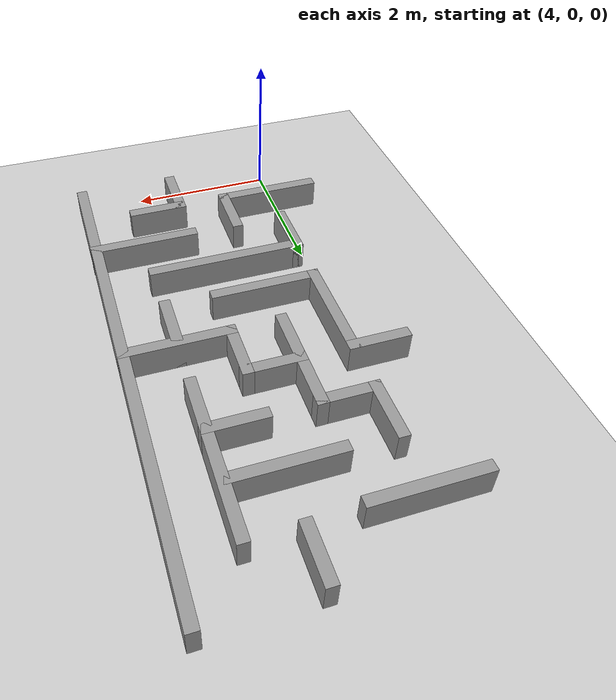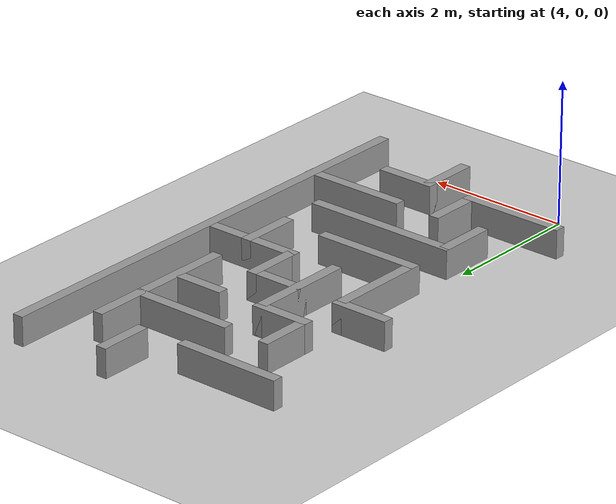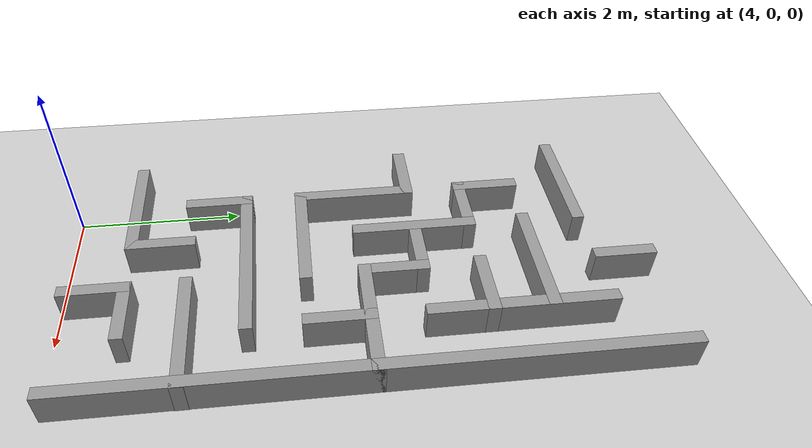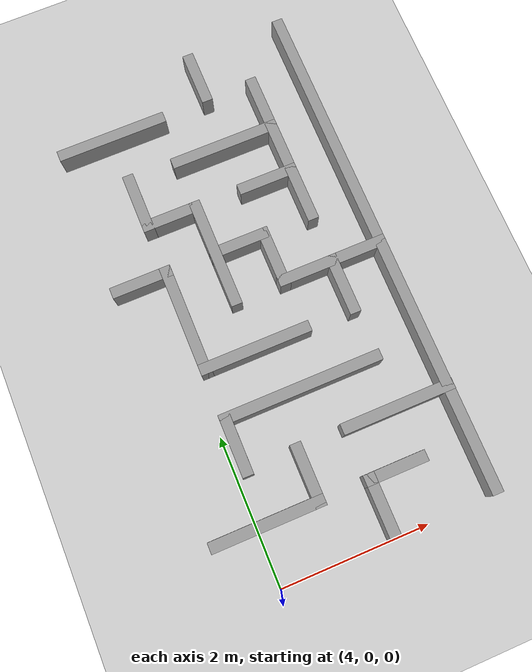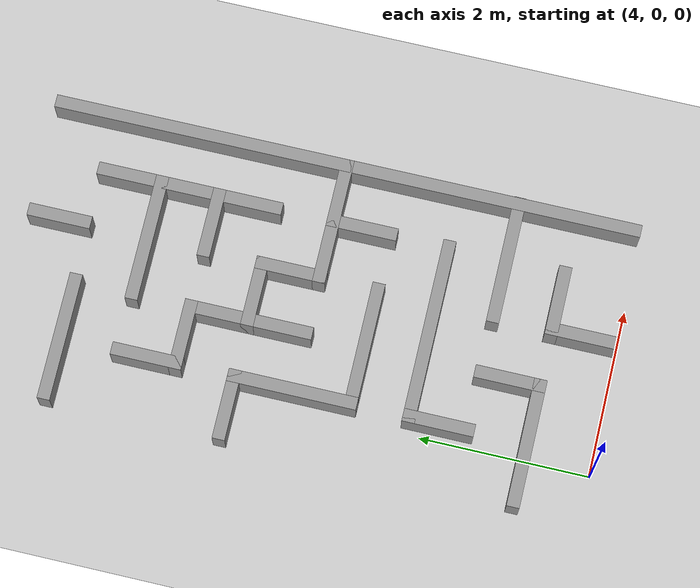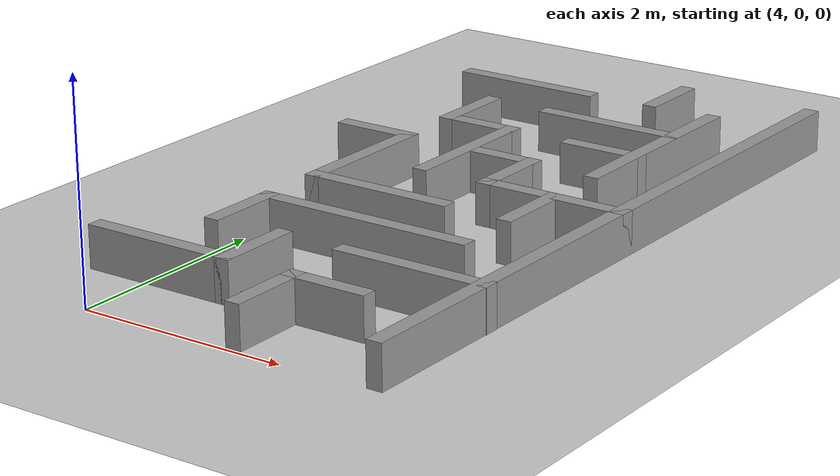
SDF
<sdf version="1.7">
 <world name="default">
  <model name="ground_plane">
   <static>1</static>
   <link name="link">
    <collision name="collision">
     <geometry><plane><normal>0 0 1</normal><size>100 100</size></plane></geometry>
     <surface>
      <contact><collide_bitmask>65535</collide_bitmask></contact>
      <friction><ode><mu>100</mu><mu2>50</mu2></ode></friction>
     </surface>
    </collision>
    <visual name="visual">
     <cast_shadows>0</cast_shadows>
     <geometry><plane><normal>0 0 1</normal><size>100 100</size></plane></geometry>
     <material>
      <script><uri>file://media/materials/scripts/gazebo.material</uri><name>Gazebo/Grey</name></script>
     </material>
    </visual>
   </link>
  </model>
  <model name="Map_1">
   <link name="Wall_158">
    <pose>3.425 0 0 0 -0 1.5708</pose>
    <inertial>
     <mass>1</mass>
     <inertia><ixx>1</ixx><ixy>0</ixy><ixz>0</ixz><iyy>1</iyy><iyz>0</iyz><izz>1</izz></inertia>
    </inertial>
    <visual name="Wall_158_Visual">
     <pose>0 0 0.2 0 -0 0</pose>
     <geometry><box><size>7 0.15 0.4</size></box></geometry>
     <material>
      <script><uri>file://media/materials/scripts/gazebo.material</uri><name>Gazebo/Grey</name></script>
      <ambient>1 1 1 1</ambient>
      <shader type="pixel"><normal_map>__default__</normal_map></shader>
      <diffuse>0.7 0.7 0.7 1</diffuse>
      <specular>0.01 0.01 0.01 1</specular>
      <emissive>0 0 0 1</emissive>
     </material>
     <meta><layer>0</layer></meta>
    </visual>
    <collision name="Wall_158_Collision">
     <pose>0 0 0.2 0 -0 0</pose>
     <geometry><box><size>7 0.15 0.4</size></box></geometry>
     <surface>
      <friction>
       <ode><mu>1</mu><mu2>1</mu2><fdir1>0 0 0</fdir1><slip1>0</slip1><slip2>0</slip2></ode>
       <torsional>
        <coefficient>1</coefficient>
        <patch_radius>0</patch_radius>
        <surface_radius>0</surface_radius>
        <use_patch_radius>1</use_patch_radius>
        <ode><slip>0</slip></ode>
       </torsional>
      </friction>
      <bounce><restitution_coefficient>0</restitution_coefficient><threshold>1e+06</threshold></bounce>
      <contact>
       <collide_without_contact>0</collide_without_contact>
       <collide_without_contact_bitmask>1</collide_without_contact_bitmask>
       <collide_bitmask>1</collide_bitmask>
       <ode>
        <soft_cfm>0</soft_cfm>
        <soft_erp>0.2</soft_erp>
        <kp>1e+13</kp>
        <kd>1</kd>
        <max_vel>0.01</max_vel>
        <min_depth>0</min_depth>
       </ode>
       <bullet>
        <split_impulse>1</split_impulse>
        <split_impulse_penetration_threshold>-0.01</split_impulse_penetration_threshold>
        <soft_cfm>0</soft_cfm>
        <soft_erp>0.2</soft_erp>
        <kp>1e+13</kp>
        <kd>1</kd>
       </bullet>
      </contact>
     </surface>
    </collision>
   </link>
   <link name="Wall_191">
    <pose>0.685 2.74 0 0 -0 0</pose>
    <inertial>
     <mass>1</mass>
     <inertia><ixx>1</ixx><ixy>0</ixy><ixz>0</ixz><iyy>1</iyy><iyz>0</iyz><izz>1</izz></inertia>
    </inertial>
    <visual name="Wall_191_Visual">
     <pose>0 0 0.2 0 -0 0</pose>
     <geometry><box><size>1.52 0.15 0.4</size></box></geometry>
     <material>
      <script><uri>file://media/materials/scripts/gazebo.material</uri><name>Gazebo/Grey</name></script>
      <ambient>1 1 1 1</ambient>
      <shader type="pixel"><normal_map>__default__</normal_map></shader>
      <diffuse>0.7 0.7 0.7 1</diffuse>
      <specular>0.01 0.01 0.01 1</specular>
      <emissive>0 0 0 1</emissive>
     </material>
     <meta><layer>0</layer></meta>
    </visual>
    <collision name="Wall_191_Collision">
     <pose>0 0 0.2 0 -0 0</pose>
     <geometry><box><size>1.52 0.15 0.4</size></box></geometry>
     <surface>
      <friction>
       <ode><mu>1</mu><mu2>1</mu2><fdir1>0 0 0</fdir1><slip1>0</slip1><slip2>0</slip2></ode>
       <torsional>
        <coefficient>1</coefficient>
        <patch_radius>0</patch_radius>
        <surface_radius>0</surface_radius>
        <use_patch_radius>1</use_patch_radius>
        <ode><slip>0</slip></ode>
       </torsional>
      </friction>
      <bounce><restitution_coefficient>0</restitution_coefficient><threshold>1e+06</threshold></bounce>
      <contact>
       <collide_without_contact>0</collide_without_contact>
       <collide_without_contact_bitmask>1</collide_without_contact_bitmask>
       <collide_bitmask>1</collide_bitmask>
       <ode>
        <soft_cfm>0</soft_cfm>
        <soft_erp>0.2</soft_erp>
        <kp>1e+13</kp>
        <kd>1</kd>
        <max_vel>0.01</max_vel>
        <min_depth>0</min_depth>
       </ode>
       <bullet>
        <split_impulse>1</split_impulse>
        <split_impulse_penetration_threshold>-0.01</split_impulse_penetration_threshold>
        <soft_cfm>0</soft_cfm>
        <soft_erp>0.2</soft_erp>
        <kp>1e+13</kp>
        <kd>1</kd>
       </bullet>
      </contact>
     </surface>
    </collision>
   </link>
   <link name="Wall_194">
    <pose>2.055 2.055 0 0 -0 0</pose>
    <inertial>
     <mass>1</mass>
     <inertia><ixx>1</ixx><ixy>0</ixy><ixz>0</ixz><iyy>1</iyy><iyz>0</iyz><izz>1</izz></inertia>
    </inertial>
    <visual name="Wall_194_Visual">
     <pose>0 0 0.2 0 -0 0</pose>
     <geometry><box><size>1.52 0.15 0.4</size></box></geometry>
     <material>
      <script><uri>file://media/materials/scripts/gazebo.material</uri><name>Gazebo/Grey</name></script>
      <ambient>1 1 1 1</ambient>
      <shader type="pixel"><normal_map>__default__</normal_map></shader>
      <diffuse>0.7 0.7 0.7 1</diffuse>
      <specular>0.01 0.01 0.01 1</specular>
      <emissive>0 0 0 1</emissive>
     </material>
     <meta><layer>0</layer></meta>
    </visual>
    <collision name="Wall_194_Collision">
     <pose>0 0 0.2 0 -0 0</pose>
     <geometry><box><size>1.52 0.15 0.4</size></box></geometry>
     <surface>
      <friction>
       <ode><mu>1</mu><mu2>1</mu2><fdir1>0 0 0</fdir1><slip1>0</slip1><slip2>0</slip2></ode>
       <torsional>
        <coefficient>1</coefficient>
        <patch_radius>0</patch_radius>
        <surface_radius>0</surface_radius>
        <use_patch_radius>1</use_patch_radius>
        <ode><slip>0</slip></ode>
       </torsional>
      </friction>
      <bounce><restitution_coefficient>0</restitution_coefficient><threshold>1e+06</threshold></bounce>
      <contact>
       <collide_without_contact>0</collide_without_contact>
       <collide_without_contact_bitmask>1</collide_without_contact_bitmask>
       <collide_bitmask>1</collide_bitmask>
       <ode>
        <soft_cfm>0</soft_cfm>
        <soft_erp>0.2</soft_erp>
        <kp>1e+13</kp>
        <kd>1</kd>
        <max_vel>0.01</max_vel>
        <min_depth>0</min_depth>
       </ode>
       <bullet>
        <split_impulse>1</split_impulse>
        <split_impulse_penetration_threshold>-0.01</split_impulse_penetration_threshold>
        <soft_cfm>0</soft_cfm>
        <soft_erp>0.2</soft_erp>
        <kp>1e+13</kp>
        <kd>1</kd>
       </bullet>
      </contact>
     </surface>
    </collision>
   </link>
   <link name="Wall_196">
    <pose>2.74 1.7125 0 0 0 -1.5708</pose>
    <inertial>
     <mass>1</mass>
     <inertia><ixx>1</ixx><ixy>0</ixy><ixz>0</ixz><iyy>1</iyy><iyz>0</iyz><izz>1</izz></inertia>
    </inertial>
    <visual name="Wall_196_Visual">
     <pose>0 0 0.2 0 -0 0</pose>
     <geometry><box><size>2.205 0.15 0.4</size></box></geometry>
     <material>
      <script><uri>file://media/materials/scripts/gazebo.material</uri><name>Gazebo/Grey</name></script>
      <ambient>1 1 1 1</ambient>
      <shader type="pixel"><normal_map>__default__</normal_map></shader>
      <diffuse>0.7 0.7 0.7 1</diffuse>
      <specular>0.01 0.01 0.01 1</specular>
      <emissive>0 0 0 1</emissive>
     </material>
     <meta><layer>0</layer></meta>
    </visual>
    <collision name="Wall_196_Collision">
     <pose>0 0 0.2 0 -0 0</pose>
     <geometry><box><size>2.205 0.15 0.4</size></box></geometry>
     <surface>
      <friction>
       <ode><mu>1</mu><mu2>1</mu2><fdir1>0 0 0</fdir1><slip1>0</slip1><slip2>0</slip2></ode>
       <torsional>
        <coefficient>1</coefficient>
        <patch_radius>0</patch_radius>
        <surface_radius>0</surface_radius>
        <use_patch_radius>1</use_patch_radius>
        <ode><slip>0</slip></ode>
       </torsional>
      </friction>
      <bounce><restitution_coefficient>0</restitution_coefficient><threshold>1e+06</threshold></bounce>
      <contact>
       <collide_without_contact>0</collide_without_contact>
       <collide_without_contact_bitmask>1</collide_without_contact_bitmask>
       <collide_bitmask>1</collide_bitmask>
       <ode>
        <soft_cfm>0</soft_cfm>
        <soft_erp>0.2</soft_erp>
        <kp>1e+13</kp>
        <kd>1</kd>
        <max_vel>0.01</max_vel>
        <min_depth>0</min_depth>
       </ode>
       <bullet>
        <split_impulse>1</split_impulse>
        <split_impulse_penetration_threshold>-0.01</split_impulse_penetration_threshold>
        <soft_cfm>0</soft_cfm>
        <soft_erp>0.2</soft_erp>
        <kp>1e+13</kp>
        <kd>1</kd>
       </bullet>
      </contact>
     </surface>
    </collision>
   </link>
   <link name="Wall_198">
    <pose>2.07424 3.10446 0 0 0 -1.5708</pose>
    <inertial>
     <mass>1</mass>
     <inertia><ixx>1</ixx><ixy>0</ixy><ixz>0</ixz><iyy>1</iyy><iyz>0</iyz><izz>1</izz></inertia>
    </inertial>
    <visual name="Wall_198_Visual">
     <pose>0 0 0.2 0 -0 0</pose>
     <geometry><box><size>0.75 0.15 0.4</size></box></geometry>
     <material>
      <script><uri>file://media/materials/scripts/gazebo.material</uri><name>Gazebo/Grey</name></script>
      <ambient>1 1 1 1</ambient>
      <shader type="pixel"><normal_map>__default__</normal_map></shader>
      <diffuse>0.7 0.7 0.7 1</diffuse>
      <specular>0.01 0.01 0.01 1</specular>
      <emissive>0 0 0 1</emissive>
     </material>
     <meta><layer>0</layer></meta>
    </visual>
    <collision name="Wall_198_Collision">
     <pose>0 0 0.2 0 -0 0</pose>
     <geometry><box><size>0.75 0.15 0.4</size></box></geometry>
     <surface>
      <friction>
       <ode><mu>1</mu><mu2>1</mu2><fdir1>0 0 0</fdir1><slip1>0</slip1><slip2>0</slip2></ode>
       <torsional>
        <coefficient>1</coefficient>
        <patch_radius>0</patch_radius>
        <surface_radius>0</surface_radius>
        <use_patch_radius>1</use_patch_radius>
        <ode><slip>0</slip></ode>
       </torsional>
      </friction>
      <bounce><restitution_coefficient>0</restitution_coefficient><threshold>1e+06</threshold></bounce>
      <contact>
       <collide_without_contact>0</collide_without_contact>
       <collide_without_contact_bitmask>1</collide_without_contact_bitmask>
       <collide_bitmask>1</collide_bitmask>
       <ode>
        <soft_cfm>0</soft_cfm>
        <soft_erp>0.2</soft_erp>
        <kp>1e+13</kp>
        <kd>1</kd>
        <max_vel>0.01</max_vel>
        <min_depth>0</min_depth>
       </ode>
       <bullet>
        <split_impulse>1</split_impulse>
        <split_impulse_penetration_threshold>-0.01</split_impulse_penetration_threshold>
        <soft_cfm>0</soft_cfm>
        <soft_erp>0.2</soft_erp>
        <kp>1e+13</kp>
        <kd>1</kd>
       </bullet>
      </contact>
     </surface>
    </collision>
   </link>
   <link name="Wall_200">
    <pose>2.3975 1.37 0 0 -0 3.14159</pose>
    <inertial>
     <mass>1</mass>
     <inertia><ixx>1</ixx><ixy>0</ixy><ixz>0</ixz><iyy>1</iyy><iyz>0</iyz><izz>1</izz></inertia>
    </inertial>
    <visual name="Wall_200_Visual">
     <pose>0 0 0.2 0 -0 0</pose>
     <geometry><box><size>0.835 0.15 0.4</size></box></geometry>
     <material>
      <script><uri>file://media/materials/scripts/gazebo.material</uri><name>Gazebo/Grey</name></script>
      <ambient>1 1 1 1</ambient>
      <shader type="pixel"><normal_map>__default__</normal_map></shader>
      <diffuse>0.7 0.7 0.7 1</diffuse>
      <specular>0.01 0.01 0.01 1</specular>
      <emissive>0 0 0 1</emissive>
     </material>
     <meta><layer>0</layer></meta>
    </visual>
    <collision name="Wall_200_Collision">
     <pose>0 0 0.2 0 -0 0</pose>
     <geometry><box><size>0.835 0.15 0.4</size></box></geometry>
     <surface>
      <friction>
       <ode><mu>1</mu><mu2>1</mu2><fdir1>0 0 0</fdir1><slip1>0</slip1><slip2>0</slip2></ode>
       <torsional>
        <coefficient>1</coefficient>
        <patch_radius>0</patch_radius>
        <surface_radius>0</surface_radius>
        <use_patch_radius>1</use_patch_radius>
        <ode><slip>0</slip></ode>
       </torsional>
      </friction>
      <bounce><restitution_coefficient>0</restitution_coefficient><threshold>1e+06</threshold></bounce>
      <contact>
       <collide_without_contact>0</collide_without_contact>
       <collide_without_contact_bitmask>1</collide_without_contact_bitmask>
       <collide_bitmask>1</collide_bitmask>
       <ode>
        <soft_cfm>0</soft_cfm>
        <soft_erp>0.2</soft_erp>
        <kp>1e+13</kp>
        <kd>1</kd>
        <max_vel>0.01</max_vel>
        <min_depth>0</min_depth>
       </ode>
       <bullet>
        <split_impulse>1</split_impulse>
        <split_impulse_penetration_threshold>-0.01</split_impulse_penetration_threshold>
        <soft_cfm>0</soft_cfm>
        <soft_erp>0.2</soft_erp>
        <kp>1e+13</kp>
        <kd>1</kd>
       </bullet>
      </contact>
     </surface>
    </collision>
   </link>
   <link name="Wall_202">
    <pose>2.74 0 0 0 -0 3.14159</pose>
    <inertial>
     <mass>1</mass>
     <inertia><ixx>1</ixx><ixy>0</ixy><ixz>0</ixz><iyy>1</iyy><iyz>0</iyz><izz>1</izz></inertia>
    </inertial>
    <visual name="Wall_202_Visual">
     <pose>0 0 0.2 0 -0 0</pose>
     <geometry><box><size>1.52 0.15 0.4</size></box></geometry>
     <material>
      <script><uri>file://media/materials/scripts/gazebo.material</uri><name>Gazebo/Grey</name></script>
      <ambient>1 1 1 1</ambient>
      <shader type="pixel"><normal_map>__default__</normal_map></shader>
      <diffuse>0.7 0.7 0.7 1</diffuse>
      <specular>0.01 0.01 0.01 1</specular>
      <emissive>0 0 0 1</emissive>
     </material>
     <meta><layer>0</layer></meta>
    </visual>
    <collision name="Wall_202_Collision">
     <pose>0 0 0.2 0 -0 0</pose>
     <geometry><box><size>1.52 0.15 0.4</size></box></geometry>
     <surface>
      <friction>
       <ode><mu>1</mu><mu2>1</mu2><fdir1>0 0 0</fdir1><slip1>0</slip1><slip2>0</slip2></ode>
       <torsional>
        <coefficient>1</coefficient>
        <patch_radius>0</patch_radius>
        <surface_radius>0</surface_radius>
        <use_patch_radius>1</use_patch_radius>
        <ode><slip>0</slip></ode>
       </torsional>
      </friction>
      <bounce><restitution_coefficient>0</restitution_coefficient><threshold>1e+06</threshold></bounce>
      <contact>
       <collide_without_contact>0</collide_without_contact>
       <collide_without_contact_bitmask>1</collide_without_contact_bitmask>
       <collide_bitmask>1</collide_bitmask>
       <ode>
        <soft_cfm>0</soft_cfm>
        <soft_erp>0.2</soft_erp>
        <kp>1e+13</kp>
        <kd>1</kd>
        <max_vel>0.01</max_vel>
        <min_depth>0</min_depth>
       </ode>
       <bullet>
        <split_impulse>1</split_impulse>
        <split_impulse_penetration_threshold>-0.01</split_impulse_penetration_threshold>
        <soft_cfm>0</soft_cfm>
        <soft_erp>0.2</soft_erp>
        <kp>1e+13</kp>
        <kd>1</kd>
       </bullet>
      </contact>
     </surface>
    </collision>
   </link>
   <link name="Wall_204">
    <pose>2.055 0.3425 0 0 -0 1.5708</pose>
    <inertial>
     <mass>1</mass>
     <inertia><ixx>1</ixx><ixy>0</ixy><ixz>0</ixz><iyy>1</iyy><iyz>0</iyz><izz>1</izz></inertia>
    </inertial>
    <visual name="Wall_204_Visual">
     <pose>0 0 0.2 0 -0 0</pose>
     <geometry><box><size>0.835 0.15 0.4</size></box></geometry>
     <material>
      <script><uri>file://media/materials/scripts/gazebo.material</uri><name>Gazebo/Grey</name></script>
      <ambient>1 1 1 1</ambient>
      <shader type="pixel"><normal_map>__default__</normal_map></shader>
      <diffuse>0.7 0.7 0.7 1</diffuse>
      <specular>0.01 0.01 0.01 1</specular>
      <emissive>0 0 0 1</emissive>
     </material>
     <meta><layer>0</layer></meta>
    </visual>
    <collision name="Wall_204_Collision">
     <pose>0 0 0.2 0 -0 0</pose>
     <geometry><box><size>0.825 0.15 0.4</size></box></geometry>
     <surface>
      <friction>
       <ode><mu>1</mu><mu2>1</mu2><fdir1>0 0 0</fdir1><slip1>0</slip1><slip2>0</slip2></ode>
       <torsional>
        <coefficient>1</coefficient>
        <patch_radius>0</patch_radius>
        <surface_radius>0</surface_radius>
        <use_patch_radius>1</use_patch_radius>
        <ode><slip>0</slip></ode>
       </torsional>
      </friction>
      <bounce><restitution_coefficient>0</restitution_coefficient><threshold>1e+06</threshold></bounce>
      <contact>
       <collide_without_contact>0</collide_without_contact>
       <collide_without_contact_bitmask>1</collide_without_contact_bitmask>
       <collide_bitmask>1</collide_bitmask>
       <ode>
        <soft_cfm>0</soft_cfm>
        <soft_erp>0.2</soft_erp>
        <kp>1e+13</kp>
        <kd>1</kd>
        <max_vel>0.01</max_vel>
        <min_depth>0</min_depth>
       </ode>
       <bullet>
        <split_impulse>1</split_impulse>
        <split_impulse_penetration_threshold>-0.01</split_impulse_penetration_threshold>
        <soft_cfm>0</soft_cfm>
        <soft_erp>0.2</soft_erp>
        <kp>1e+13</kp>
        <kd>1</kd>
       </bullet>
      </contact>
     </surface>
    </collision>
   </link>
   <link name="Wall_206">
    <pose>1.37 0.685 0 0 -0 1.5708</pose>
    <inertial>
     <mass>1</mass>
     <inertia><ixx>1</ixx><ixy>0</ixy><ixz>0</ixz><iyy>1</iyy><iyz>0</iyz><izz>1</izz></inertia>
    </inertial>
    <visual name="Wall_206_Visual">
     <pose>0 0 0.2 0 -0 0</pose>
     <geometry><box><size>1.52 0.15 0.4</size></box></geometry>
     <material>
      <script><uri>file://media/materials/scripts/gazebo.material</uri><name>Gazebo/Grey</name></script>
      <ambient>1 1 1 1</ambient>
      <shader type="pixel"><normal_map>__default__</normal_map></shader>
      <diffuse>0.7 0.7 0.7 1</diffuse>
      <specular>0.01 0.01 0.01 1</specular>
      <emissive>0 0 0 1</emissive>
     </material>
     <meta><layer>0</layer></meta>
    </visual>
    <collision name="Wall_206_Collision">
     <pose>0 0 0.2 0 -0 0</pose>
     <geometry><box><size>1.52 0.15 0.4</size></box></geometry>
     <surface>
      <friction>
       <ode><mu>1</mu><mu2>1</mu2><fdir1>0 0 0</fdir1><slip1>0</slip1><slip2>0</slip2></ode>
       <torsional>
        <coefficient>1</coefficient>
        <patch_radius>0</patch_radius>
        <surface_radius>0</surface_radius>
        <use_patch_radius>1</use_patch_radius>
        <ode><slip>0</slip></ode>
       </torsional>
      </friction>
      <bounce><restitution_coefficient>0</restitution_coefficient><threshold>1e+06</threshold></bounce>
      <contact>
       <collide_without_contact>0</collide_without_contact>
       <collide_without_contact_bitmask>1</collide_without_contact_bitmask>
       <collide_bitmask>1</collide_bitmask>
       <ode>
        <soft_cfm>0</soft_cfm>
        <soft_erp>0.2</soft_erp>
        <kp>1e+13</kp>
        <kd>1</kd>
        <max_vel>0.01</max_vel>
        <min_depth>0</min_depth>
       </ode>
       <bullet>
        <split_impulse>1</split_impulse>
        <split_impulse_penetration_threshold>-0.01</split_impulse_penetration_threshold>
        <soft_cfm>0</soft_cfm>
        <soft_erp>0.2</soft_erp>
        <kp>1e+13</kp>
        <kd>1</kd>
       </bullet>
      </contact>
     </surface>
    </collision>
   </link>
   <link name="Wall_209">
    <pose>1.7125 0.685 0 0 -0 3.14159</pose>
    <inertial>
     <mass>1</mass>
     <inertia><ixx>1</ixx><ixy>0</ixy><ixz>0</ixz><iyy>1</iyy><iyz>0</iyz><izz>1</izz></inertia>
    </inertial>
    <visual name="Wall_209_Visual">
     <pose>0 0 0.2 0 -0 0</pose>
     <geometry><box><size>0.835 0.15 0.4</size></box></geometry>
     <material>
      <script><uri>file://media/materials/scripts/gazebo.material</uri><name>Gazebo/Grey</name></script>
      <ambient>1 1 1 1</ambient>
      <shader type="pixel"><normal_map>__default__</normal_map></shader>
      <diffuse>0.7 0.7 0.7 1</diffuse>
      <specular>0.01 0.01 0.01 1</specular>
      <emissive>0 0 0 1</emissive>
     </material>
     <meta><layer>0</layer></meta>
    </visual>
    <collision name="Wall_209_Collision">
     <pose>0 0 0.2 0 -0 0</pose>
     <geometry><box><size>0.835 0.15 0.4</size></box></geometry>
     <surface>
      <friction>
       <ode><mu>1</mu><mu2>1</mu2><fdir1>0 0 0</fdir1><slip1>0</slip1><slip2>0</slip2></ode>
       <torsional>
        <coefficient>1</coefficient>
        <patch_radius>0</patch_radius>
        <surface_radius>0</surface_radius>
        <use_patch_radius>1</use_patch_radius>
        <ode><slip>0</slip></ode>
       </torsional>
      </friction>
      <bounce><restitution_coefficient>0</restitution_coefficient><threshold>1e+06</threshold></bounce>
      <contact>
       <collide_without_contact>0</collide_without_contact>
       <collide_without_contact_bitmask>1</collide_without_contact_bitmask>
       <collide_bitmask>1</collide_bitmask>
       <ode>
        <soft_cfm>0</soft_cfm>
        <soft_erp>0.2</soft_erp>
        <kp>1e+13</kp>
        <kd>1</kd>
        <max_vel>0.01</max_vel>
        <min_depth>0</min_depth>
       </ode>
       <bullet>
        <split_impulse>1</split_impulse>
        <split_impulse_penetration_threshold>-0.01</split_impulse_penetration_threshold>
        <soft_cfm>0</soft_cfm>
        <soft_erp>0.2</soft_erp>
        <kp>1e+13</kp>
        <kd>1</kd>
       </bullet>
      </contact>
     </surface>
    </collision>
   </link>
   <link name="Wall_215">
    <pose>1.0275 1.37 0 0 -0 3.14159</pose>
    <inertial>
     <mass>1</mass>
     <inertia><ixx>1</ixx><ixy>0</ixy><ixz>0</ixz><iyy>1</iyy><iyz>0</iyz><izz>1</izz></inertia>
    </inertial>
    <visual name="Wall_215_Visual">
     <pose>0 0 0.2 0 -0 0</pose>
     <geometry><box><size>0.835 0.15 0.4</size></box></geometry>
     <material>
      <script><uri>file://media/materials/scripts/gazebo.material</uri><name>Gazebo/Grey</name></script>
      <ambient>1 1 1 1</ambient>
      <shader type="pixel"><normal_map>__default__</normal_map></shader>
      <diffuse>0.7 0.7 0.7 1</diffuse>
      <specular>0.01 0.01 0.01 1</specular>
      <emissive>0 0 0 1</emissive>
     </material>
     <meta><layer>0</layer></meta>
    </visual>
    <collision name="Wall_215_Collision">
     <pose>0 0 0.2 0 -0 0</pose>
     <geometry><box><size>0.835 0.15 0.4</size></box></geometry>
     <surface>
      <friction>
       <ode><mu>1</mu><mu2>1</mu2><fdir1>0 0 0</fdir1><slip1>0</slip1><slip2>0</slip2></ode>
       <torsional>
        <coefficient>1</coefficient>
        <patch_radius>0</patch_radius>
        <surface_radius>0</surface_radius>
        <use_patch_radius>1</use_patch_radius>
        <ode><slip>0</slip></ode>
       </torsional>
      </friction>
      <bounce><restitution_coefficient>0</restitution_coefficient><threshold>1e+06</threshold></bounce>
      <contact>
       <collide_without_contact>0</collide_without_contact>
       <collide_without_contact_bitmask>1</collide_without_contact_bitmask>
       <collide_bitmask>1</collide_bitmask>
       <ode>
        <soft_cfm>0</soft_cfm>
        <soft_erp>0.2</soft_erp>
        <kp>1e+13</kp>
        <kd>1</kd>
        <max_vel>0.01</max_vel>
        <min_depth>0</min_depth>
       </ode>
       <bullet>
        <split_impulse>1</split_impulse>
        <split_impulse_penetration_threshold>-0.01</split_impulse_penetration_threshold>
        <soft_cfm>0</soft_cfm>
        <soft_erp>0.2</soft_erp>
        <kp>1e+13</kp>
        <kd>1</kd>
       </bullet>
      </contact>
     </surface>
    </collision>
   </link>
   <link name="Wall_217">
    <pose>0.685 1.7125 0 0 -0 1.5708</pose>
    <inertial>
     <mass>1</mass>
     <inertia><ixx>1</ixx><ixy>0</ixy><ixz>0</ixz><iyy>1</iyy><iyz>0</iyz><izz>1</izz></inertia>
    </inertial>
    <visual name="Wall_217_Visual">
     <pose>0 0 0.2 0 -0 0</pose>
     <geometry><box><size>0.835 0.15 0.4</size></box></geometry>
     <material>
      <script><uri>file://media/materials/scripts/gazebo.material</uri><name>Gazebo/Grey</name></script>
      <ambient>1 1 1 1</ambient>
      <shader type="pixel"><normal_map>__default__</normal_map></shader>
      <diffuse>0.7 0.7 0.7 1</diffuse>
      <specular>0.01 0.01 0.01 1</specular>
      <emissive>0 0 0 1</emissive>
     </material>
     <meta><layer>0</layer></meta>
    </visual>
    <collision name="Wall_217_Collision">
     <pose>0 0 0.2 0 -0 0</pose>
     <geometry><box><size>0.835 0.15 0.4</size></box></geometry>
     <surface>
      <friction>
       <ode><mu>1</mu><mu2>1</mu2><fdir1>0 0 0</fdir1><slip1>0</slip1><slip2>0</slip2></ode>
       <torsional>
        <coefficient>1</coefficient>
        <patch_radius>0</patch_radius>
        <surface_radius>0</surface_radius>
        <use_patch_radius>1</use_patch_radius>
        <ode><slip>0</slip></ode>
       </torsional>
      </friction>
      <bounce><restitution_coefficient>0</restitution_coefficient><threshold>1e+06</threshold></bounce>
      <contact>
       <collide_without_contact>0</collide_without_contact>
       <collide_without_contact_bitmask>1</collide_without_contact_bitmask>
       <collide_bitmask>1</collide_bitmask>
       <ode>
        <soft_cfm>0</soft_cfm>
        <soft_erp>0.2</soft_erp>
        <kp>1e+13</kp>
        <kd>1</kd>
        <max_vel>0.01</max_vel>
        <min_depth>0</min_depth>
       </ode>
       <bullet>
        <split_impulse>1</split_impulse>
        <split_impulse_penetration_threshold>-0.01</split_impulse_penetration_threshold>
        <soft_cfm>0</soft_cfm>
        <soft_erp>0.2</soft_erp>
        <kp>1e+13</kp>
        <kd>1</kd>
       </bullet>
      </contact>
     </surface>
    </collision>
   </link>
   <link name="Wall_231">
    <pose>0.3425 0.685 0 0 -0 0</pose>
    <inertial>
     <mass>1</mass>
     <inertia><ixx>1</ixx><ixy>0</ixy><ixz>0</ixz><iyy>1</iyy><iyz>0</iyz><izz>1</izz></inertia>
    </inertial>
    <visual name="Wall_231_Visual">
     <pose>0 0 0.2 0 -0 0</pose>
     <geometry><box><size>0.835 0.15 0.4</size></box></geometry>
     <material>
      <script><uri>file://media/materials/scripts/gazebo.material</uri><name>Gazebo/Grey</name></script>
      <ambient>1 1 1 1</ambient>
      <shader type="pixel"><normal_map>__default__</normal_map></shader>
      <diffuse>0.7 0.7 0.7 1</diffuse>
      <specular>0.01 0.01 0.01 1</specular>
      <emissive>0 0 0 1</emissive>
     </material>
     <meta><layer>0</layer></meta>
    </visual>
    <collision name="Wall_231_Collision">
     <pose>0 0 0.2 0 -0 0</pose>
     <geometry><box><size>0.835 0.15 0.4</size></box></geometry>
     <surface>
      <friction>
       <ode><mu>1</mu><mu2>1</mu2><fdir1>0 0 0</fdir1><slip1>0</slip1><slip2>0</slip2></ode>
       <torsional>
        <coefficient>1</coefficient>
        <patch_radius>0</patch_radius>
        <surface_radius>0</surface_radius>
        <use_patch_radius>1</use_patch_radius>
        <ode><slip>0</slip></ode>
       </torsional>
      </friction>
      <bounce><restitution_coefficient>0</restitution_coefficient><threshold>1e+06</threshold></bounce>
      <contact>
       <collide_without_contact>0</collide_without_contact>
       <collide_without_contact_bitmask>1</collide_without_contact_bitmask>
       <collide_bitmask>1</collide_bitmask>
       <ode>
        <soft_cfm>0</soft_cfm>
        <soft_erp>0.2</soft_erp>
        <kp>1e+13</kp>
        <kd>1</kd>
        <max_vel>0.01</max_vel>
        <min_depth>0</min_depth>
       </ode>
       <bullet>
        <split_impulse>1</split_impulse>
        <split_impulse_penetration_threshold>-0.01</split_impulse_penetration_threshold>
        <soft_cfm>0</soft_cfm>
        <soft_erp>0.2</soft_erp>
        <kp>1e+13</kp>
        <kd>1</kd>
       </bullet>
      </contact>
     </surface>
    </collision>
   </link>
   <link name="Wall_233">
    <pose>0.685 0 0 0 0 -1.5708</pose>
    <inertial>
     <mass>1</mass>
     <inertia><ixx>1</ixx><ixy>0</ixy><ixz>0</ixz><iyy>1</iyy><iyz>0</iyz><izz>1</izz></inertia>
    </inertial>
    <visual name="Wall_233_Visual">
     <pose>0 0 0.2 0 -0 0</pose>
     <geometry><box><size>1.52 0.15 0.4</size></box></geometry>
     <material>
      <script><uri>file://media/materials/scripts/gazebo.material</uri><name>Gazebo/Grey</name></script>
      <ambient>1 1 1 1</ambient>
      <shader type="pixel"><normal_map>__default__</normal_map></shader>
      <diffuse>0.7 0.7 0.7 1</diffuse>
      <specular>0.01 0.01 0.01 1</specular>
      <emissive>0 0 0 1</emissive>
     </material>
     <meta><layer>0</layer></meta>
    </visual>
    <collision name="Wall_233_Collision">
     <pose>0 0 0.2 0 -0 0</pose>
     <geometry><box><size>1.52 0.15 0.4</size></box></geometry>
     <surface>
      <friction>
       <ode><mu>1</mu><mu2>1</mu2><fdir1>0 0 0</fdir1><slip1>0</slip1><slip2>0</slip2></ode>
       <torsional>
        <coefficient>1</coefficient>
        <patch_radius>0</patch_radius>
        <surface_radius>0</surface_radius>
        <use_patch_radius>1</use_patch_radius>
        <ode><slip>0</slip></ode>
       </torsional>
      </friction>
      <bounce><restitution_coefficient>0</restitution_coefficient><threshold>1e+06</threshold></bounce>
      <contact>
       <collide_without_contact>0</collide_without_contact>
       <collide_without_contact_bitmask>1</collide_without_contact_bitmask>
       <collide_bitmask>1</collide_bitmask>
       <ode>
        <soft_cfm>0</soft_cfm>
        <soft_erp>0.2</soft_erp>
        <kp>1e+13</kp>
        <kd>1</kd>
        <max_vel>0.01</max_vel>
        <min_depth>0</min_depth>
       </ode>
       <bullet>
        <split_impulse>1</split_impulse>
        <split_impulse_penetration_threshold>-0.01</split_impulse_penetration_threshold>
        <soft_cfm>0</soft_cfm>
        <soft_erp>0.2</soft_erp>
        <kp>1e+13</kp>
        <kd>1</kd>
       </bullet>
      </contact>
     </surface>
    </collision>
   </link>
   <link name="Wall_241">
    <pose>1.37 -0.685 0 0 -0 0</pose>
    <inertial>
     <mass>1</mass>
     <inertia><ixx>1</ixx><ixy>0</ixy><ixz>0</ixz><iyy>1</iyy><iyz>0</iyz><izz>1</izz></inertia>
    </inertial>
    <visual name="Wall_241_Visual">
     <pose>0 0 0.2 0 -0 0</pose>
     <geometry><box><size>1.52 0.15 0.4</size></box></geometry>
     <material>
      <script><uri>file://media/materials/scripts/gazebo.material</uri><name>Gazebo/Grey</name></script>
      <ambient>1 1 1 1</ambient>
      <shader type="pixel"><normal_map>__default__</normal_map></shader>
      <diffuse>0.7 0.7 0.7 1</diffuse>
      <specular>0.01 0.01 0.01 1</specular>
      <emissive>0 0 0 1</emissive>
     </material>
     <meta><layer>0</layer></meta>
    </visual>
    <collision name="Wall_241_Collision">
     <pose>0 0 0.2 0 -0 0</pose>
     <geometry><box><size>1.52 0.15 0.4</size></box></geometry>
     <surface>
      <friction>
       <ode><mu>1</mu><mu2>1</mu2><fdir1>0 0 0</fdir1><slip1>0</slip1><slip2>0</slip2></ode>
       <torsional>
        <coefficient>1</coefficient>
        <patch_radius>0</patch_radius>
        <surface_radius>0</surface_radius>
        <use_patch_radius>1</use_patch_radius>
        <ode><slip>0</slip></ode>
       </torsional>
      </friction>
      <bounce><restitution_coefficient>0</restitution_coefficient><threshold>1e+06</threshold></bounce>
      <contact>
       <collide_without_contact>0</collide_without_contact>
       <collide_without_contact_bitmask>1</collide_without_contact_bitmask>
       <collide_bitmask>1</collide_bitmask>
       <ode>
        <soft_cfm>0</soft_cfm>
        <soft_erp>0.2</soft_erp>
        <kp>1e+13</kp>
        <kd>1</kd>
        <max_vel>0.01</max_vel>
        <min_depth>0</min_depth>
       </ode>
       <bullet>
        <split_impulse>1</split_impulse>
        <split_impulse_penetration_threshold>-0.01</split_impulse_penetration_threshold>
        <soft_cfm>0</soft_cfm>
        <soft_erp>0.2</soft_erp>
        <kp>1e+13</kp>
        <kd>1</kd>
       </bullet>
      </contact>
     </surface>
    </collision>
   </link>
   <link name="Wall_243">
    <pose>2.74 -0.3425 0 0 0 -1.5708</pose>
    <inertial>
     <mass>1</mass>
     <inertia><ixx>1</ixx><ixy>0</ixy><ixz>0</ixz><iyy>1</iyy><iyz>0</iyz><izz>1</izz></inertia>
    </inertial>
    <visual name="Wall_243_Visual">
     <pose>0 0 0.2 0 -0 0</pose>
     <geometry><box><size>0.835 0.15 0.4</size></box></geometry>
     <material>
      <script><uri>file://media/materials/scripts/gazebo.material</uri><name>Gazebo/Grey</name></script>
      <ambient>1 1 1 1</ambient>
      <shader type="pixel"><normal_map>__default__</normal_map></shader>
      <diffuse>0.7 0.7 0.7 1</diffuse>
      <specular>0.01 0.01 0.01 1</specular>
      <emissive>0 0 0 1</emissive>
     </material>
     <meta><layer>0</layer></meta>
    </visual>
    <collision name="Wall_243_Collision">
     <pose>0 0 0.2 0 -0 0</pose>
     <geometry><box><size>0.835 0.15 0.4</size></box></geometry>
     <surface>
      <friction>
       <ode><mu>1</mu><mu2>1</mu2><fdir1>0 0 0</fdir1><slip1>0</slip1><slip2>0</slip2></ode>
       <torsional>
        <coefficient>1</coefficient>
        <patch_radius>0</patch_radius>
        <surface_radius>0</surface_radius>
        <use_patch_radius>1</use_patch_radius>
        <ode><slip>0</slip></ode>
       </torsional>
      </friction>
      <bounce><restitution_coefficient>0</restitution_coefficient><threshold>1e+06</threshold></bounce>
      <contact>
       <collide_without_contact>0</collide_without_contact>
       <collide_without_contact_bitmask>1</collide_without_contact_bitmask>
       <collide_bitmask>1</collide_bitmask>
       <ode>
        <soft_cfm>0</soft_cfm>
        <soft_erp>0.2</soft_erp>
        <kp>1e+13</kp>
        <kd>1</kd>
        <max_vel>0.01</max_vel>
        <min_depth>0</min_depth>
       </ode>
       <bullet>
        <split_impulse>1</split_impulse>
        <split_impulse_penetration_threshold>-0.01</split_impulse_penetration_threshold>
        <soft_cfm>0</soft_cfm>
        <soft_erp>0.2</soft_erp>
        <kp>1e+13</kp>
        <kd>1</kd>
       </bullet>
      </contact>
     </surface>
    </collision>
   </link>
   <link name="Wall_261">
    <pose>0.685 -2.74 0 0 -0 0</pose>
    <inertial>
     <mass>1</mass>
     <inertia><ixx>1</ixx><ixy>0</ixy><ixz>0</ixz><iyy>1</iyy><iyz>0</iyz><izz>1</izz></inertia>
    </inertial>
    <visual name="Wall_261_Visual">
     <pose>0 0 0.2 0 -0 0</pose>
     <geometry><box><size>1.52 0.15 0.4</size></box></geometry>
     <material>
      <script><uri>file://media/materials/scripts/gazebo.material</uri><name>Gazebo/Grey</name></script>
      <ambient>1 1 1 1</ambient>
      <shader type="pixel"><normal_map>__default__</normal_map></shader>
      <diffuse>0.7 0.7 0.7 1</diffuse>
      <specular>0.01 0.01 0.01 1</specular>
      <emissive>0 0 0 1</emissive>
     </material>
     <meta><layer>0</layer></meta>
    </visual>
    <collision name="Wall_261_Collision">
     <pose>0 0 0.2 0 -0 0</pose>
     <geometry><box><size>1.52 0.15 0.4</size></box></geometry>
     <surface>
      <friction>
       <ode><mu>1</mu><mu2>1</mu2><fdir1>0 0 0</fdir1><slip1>0</slip1><slip2>0</slip2></ode>
       <torsional>
        <coefficient>1</coefficient>
        <patch_radius>0</patch_radius>
        <surface_radius>0</surface_radius>
        <use_patch_radius>1</use_patch_radius>
        <ode><slip>0</slip></ode>
       </torsional>
      </friction>
      <bounce><restitution_coefficient>0</restitution_coefficient><threshold>1e+06</threshold></bounce>
      <contact>
       <collide_without_contact>0</collide_without_contact>
       <collide_without_contact_bitmask>1</collide_without_contact_bitmask>
       <collide_bitmask>1</collide_bitmask>
       <ode>
        <soft_cfm>0</soft_cfm>
        <soft_erp>0.2</soft_erp>
        <kp>1e+13</kp>
        <kd>1</kd>
        <max_vel>0.01</max_vel>
        <min_depth>0</min_depth>
       </ode>
       <bullet>
        <split_impulse>1</split_impulse>
        <split_impulse_penetration_threshold>-0.01</split_impulse_penetration_threshold>
        <soft_cfm>0</soft_cfm>
        <soft_erp>0.2</soft_erp>
        <kp>1e+13</kp>
        <kd>1</kd>
       </bullet>
      </contact>
     </surface>
    </collision>
   </link>
   <link name="Wall_263">
    <pose>1.37 -2.3975 0 0 -0 1.5708</pose>
    <inertial>
     <mass>1</mass>
     <inertia><ixx>1</ixx><ixy>0</ixy><ixz>0</ixz><iyy>1</iyy><iyz>0</iyz><izz>1</izz></inertia>
    </inertial>
    <visual name="Wall_263_Visual">
     <pose>0 0 0.2 0 -0 0</pose>
     <geometry><box><size>0.835 0.15 0.4</size></box></geometry>
     <material>
      <script><uri>file://media/materials/scripts/gazebo.material</uri><name>Gazebo/Grey</name></script>
      <ambient>1 1 1 1</ambient>
      <shader type="pixel"><normal_map>__default__</normal_map></shader>
      <diffuse>0.7 0.7 0.7 1</diffuse>
      <specular>0.01 0.01 0.01 1</specular>
      <emissive>0 0 0 1</emissive>
     </material>
     <meta><layer>0</layer></meta>
    </visual>
    <collision name="Wall_263_Collision">
     <pose>0 0 0.2 0 -0 0</pose>
     <geometry><box><size>0.835 0.15 0.4</size></box></geometry>
     <surface>
      <friction>
       <ode><mu>1</mu><mu2>1</mu2><fdir1>0 0 0</fdir1><slip1>0</slip1><slip2>0</slip2></ode>
       <torsional>
        <coefficient>1</coefficient>
        <patch_radius>0</patch_radius>
        <surface_radius>0</surface_radius>
        <use_patch_radius>1</use_patch_radius>
        <ode><slip>0</slip></ode>
       </torsional>
      </friction>
      <bounce><restitution_coefficient>0</restitution_coefficient><threshold>1e+06</threshold></bounce>
      <contact>
       <collide_without_contact>0</collide_without_contact>
       <collide_without_contact_bitmask>1</collide_without_contact_bitmask>
       <collide_bitmask>1</collide_bitmask>
       <ode>
        <soft_cfm>0</soft_cfm>
        <soft_erp>0.2</soft_erp>
        <kp>1e+13</kp>
        <kd>1</kd>
        <max_vel>0.01</max_vel>
        <min_depth>0</min_depth>
       </ode>
       <bullet>
        <split_impulse>1</split_impulse>
        <split_impulse_penetration_threshold>-0.01</split_impulse_penetration_threshold>
        <soft_cfm>0</soft_cfm>
        <soft_erp>0.2</soft_erp>
        <kp>1e+13</kp>
        <kd>1</kd>
       </bullet>
      </contact>
     </surface>
    </collision>
   </link>
   <link name="Wall_265">
    <pose>2.3975 -2.055 0 0 -0 0</pose>
    <inertial>
     <mass>1</mass>
     <inertia><ixx>1</ixx><ixy>0</ixy><ixz>0</ixz><iyy>1</iyy><iyz>0</iyz><izz>1</izz></inertia>
    </inertial>
    <visual name="Wall_265_Visual">
     <pose>0.342 0 0.2 0 -0 0</pose>
     <geometry><box><size>1.53 0.15 0.4</size></box></geometry>
     <material>
      <script><uri>file://media/materials/scripts/gazebo.material</uri><name>Gazebo/Grey</name></script>
      <ambient>1 1 1 1</ambient>
      <shader type="pixel"><normal_map>__default__</normal_map></shader>
      <diffuse>0.7 0.7 0.7 1</diffuse>
      <specular>0.01 0.01 0.01 1</specular>
      <emissive>0 0 0 1</emissive>
     </material>
     <meta><layer>0</layer></meta>
    </visual>
    <collision name="Wall_265_Collision">
     <pose>0.342 0 0.2 0 -0 0</pose>
     <geometry><box><size>1.53 0.15 0.4</size></box></geometry>
     <surface>
      <friction>
       <ode><mu>1</mu><mu2>1</mu2><fdir1>0 0 0</fdir1><slip1>0</slip1><slip2>0</slip2></ode>
       <torsional>
        <coefficient>1</coefficient>
        <patch_radius>0</patch_radius>
        <surface_radius>0</surface_radius>
        <use_patch_radius>1</use_patch_radius>
        <ode><slip>0</slip></ode>
       </torsional>
      </friction>
      <bounce><restitution_coefficient>0</restitution_coefficient><threshold>1e+06</threshold></bounce>
      <contact>
       <collide_without_contact>0</collide_without_contact>
       <collide_without_contact_bitmask>1</collide_without_contact_bitmask>
       <collide_bitmask>1</collide_bitmask>
       <ode>
        <soft_cfm>0</soft_cfm>
        <soft_erp>0.2</soft_erp>
        <kp>1e+13</kp>
        <kd>1</kd>
        <max_vel>0.01</max_vel>
        <min_depth>0</min_depth>
       </ode>
       <bullet>
        <split_impulse>1</split_impulse>
        <split_impulse_penetration_threshold>-0.01</split_impulse_penetration_threshold>
        <soft_cfm>0</soft_cfm>
        <soft_erp>0.2</soft_erp>
        <kp>1e+13</kp>
        <kd>1</kd>
       </bullet>
      </contact>
     </surface>
    </collision>
   </link>
   <link name="Wall_267">
    <pose>0.685 -1.7125 0 0 -0 1.5708</pose>
    <inertial>
     <mass>1</mass>
     <inertia><ixx>1</ixx><ixy>0</ixy><ixz>0</ixz><iyy>1</iyy><iyz>0</iyz><izz>1</izz></inertia>
    </inertial>
    <visual name="Wall_267_Visual">
     <pose>0 0 0.2 0 -0 0</pose>
     <geometry><box><size>0.835 0.15 0.4</size></box></geometry>
     <material>
      <script><uri>file://media/materials/scripts/gazebo.material</uri><name>Gazebo/Grey</name></script>
      <ambient>1 1 1 1</ambient>
      <shader type="pixel"><normal_map>__default__</normal_map></shader>
      <diffuse>0.7 0.7 0.7 1</diffuse>
      <specular>0.01 0.01 0.01 1</specular>
      <emissive>0 0 0 1</emissive>
     </material>
     <meta><layer>0</layer></meta>
    </visual>
    <collision name="Wall_267_Collision">
     <pose>0 0 0.2 0 -0 0</pose>
     <geometry><box><size>0.835 0.15 0.4</size></box></geometry>
     <surface>
      <friction>
       <ode><mu>1</mu><mu2>1</mu2><fdir1>0 0 0</fdir1><slip1>0</slip1><slip2>0</slip2></ode>
       <torsional>
        <coefficient>1</coefficient>
        <patch_radius>0</patch_radius>
        <surface_radius>0</surface_radius>
        <use_patch_radius>1</use_patch_radius>
        <ode><slip>0</slip></ode>
       </torsional>
      </friction>
      <bounce><restitution_coefficient>0</restitution_coefficient><threshold>1e+06</threshold></bounce>
      <contact>
       <collide_without_contact>0</collide_without_contact>
       <collide_without_contact_bitmask>1</collide_without_contact_bitmask>
       <collide_bitmask>1</collide_bitmask>
       <ode>
        <soft_cfm>0</soft_cfm>
        <soft_erp>0.2</soft_erp>
        <kp>1e+13</kp>
        <kd>1</kd>
        <max_vel>0.01</max_vel>
        <min_depth>0</min_depth>
       </ode>
       <bullet>
        <split_impulse>1</split_impulse>
        <split_impulse_penetration_threshold>-0.01</split_impulse_penetration_threshold>
        <soft_cfm>0</soft_cfm>
        <soft_erp>0.2</soft_erp>
        <kp>1e+13</kp>
        <kd>1</kd>
       </bullet>
      </contact>
     </surface>
    </collision>
   </link>
   <link name="Wall_269">
    <pose>1.7125 -1.37 0 0 -0 0</pose>
    <inertial>
     <mass>1</mass>
     <inertia><ixx>1</ixx><ixy>0</ixy><ixz>0</ixz><iyy>1</iyy><iyz>0</iyz><izz>1</izz></inertia>
    </inertial>
    <visual name="Wall_269_Visual">
     <pose>0 0 0.2 0 -0 0</pose>
     <geometry><box><size>2.205 0.15 0.4</size></box></geometry>
     <material>
      <script><uri>file://media/materials/scripts/gazebo.material</uri><name>Gazebo/Grey</name></script>
      <ambient>1 1 1 1</ambient>
      <shader type="pixel"><normal_map>__default__</normal_map></shader>
      <diffuse>0.7 0.7 0.7 1</diffuse>
      <specular>0.01 0.01 0.01 1</specular>
      <emissive>0 0 0 1</emissive>
     </material>
     <meta><layer>0</layer></meta>
    </visual>
    <collision name="Wall_269_Collision">
     <pose>0 0 0.2 0 -0 0</pose>
     <geometry><box><size>2.205 0.15 0.4</size></box></geometry>
     <surface>
      <friction>
       <ode><mu>1</mu><mu2>1</mu2><fdir1>0 0 0</fdir1><slip1>0</slip1><slip2>0</slip2></ode>
       <torsional>
        <coefficient>1</coefficient>
        <patch_radius>0</patch_radius>
        <surface_radius>0</surface_radius>
        <use_patch_radius>1</use_patch_radius>
        <ode><slip>0</slip></ode>
       </torsional>
      </friction>
      <bounce><restitution_coefficient>0</restitution_coefficient><threshold>1e+06</threshold></bounce>
      <contact>
       <collide_without_contact>0</collide_without_contact>
       <collide_without_contact_bitmask>1</collide_without_contact_bitmask>
       <collide_bitmask>1</collide_bitmask>
       <ode>
        <soft_cfm>0</soft_cfm>
        <soft_erp>0.2</soft_erp>
        <kp>1e+13</kp>
        <kd>1</kd>
        <max_vel>0.01</max_vel>
        <min_depth>0</min_depth>
       </ode>
       <bullet>
        <split_impulse>1</split_impulse>
        <split_impulse_penetration_threshold>-0.01</split_impulse_penetration_threshold>
        <soft_cfm>0</soft_cfm>
        <soft_erp>0.2</soft_erp>
        <kp>1e+13</kp>
        <kd>1</kd>
       </bullet>
      </contact>
     </surface>
    </collision>
   </link>
   <link name="Wall_273">
    <pose>2.3975 -2.74 0 0 -0 3.14159</pose>
    <inertial>
     <mass>1</mass>
     <inertia><ixx>1</ixx><ixy>0</ixy><ixz>0</ixz><iyy>1</iyy><iyz>0</iyz><izz>1</izz></inertia>
    </inertial>
    <visual name="Wall_273_Visual">
     <pose>0 0 0.2 0 -0 0</pose>
     <geometry><box><size>0.835 0.15 0.4</size></box></geometry>
     <material>
      <script><uri>file://media/materials/scripts/gazebo.material</uri><name>Gazebo/Grey</name></script>
      <ambient>1 1 1 1</ambient>
      <shader type="pixel"><normal_map>__default__</normal_map></shader>
      <diffuse>0.7 0.7 0.7 1</diffuse>
      <specular>0.01 0.01 0.01 1</specular>
      <emissive>0 0 0 1</emissive>
     </material>
     <meta><layer>0</layer></meta>
    </visual>
    <collision name="Wall_273_Collision">
     <pose>0 0 0.2 0 -0 0</pose>
     <geometry><box><size>0.835 0.15 0.4</size></box></geometry>
     <surface>
      <friction>
       <ode><mu>1</mu><mu2>1</mu2><fdir1>0 0 0</fdir1><slip1>0</slip1><slip2>0</slip2></ode>
       <torsional>
        <coefficient>1</coefficient>
        <patch_radius>0</patch_radius>
        <surface_radius>0</surface_radius>
        <use_patch_radius>1</use_patch_radius>
        <ode><slip>0</slip></ode>
       </torsional>
      </friction>
      <bounce><restitution_coefficient>0</restitution_coefficient><threshold>1e+06</threshold></bounce>
      <contact>
       <collide_without_contact>0</collide_without_contact>
       <collide_without_contact_bitmask>1</collide_without_contact_bitmask>
       <collide_bitmask>1</collide_bitmask>
       <ode>
        <soft_cfm>0</soft_cfm>
        <soft_erp>0.2</soft_erp>
        <kp>1e+13</kp>
        <kd>1</kd>
        <max_vel>0.01</max_vel>
        <min_depth>0</min_depth>
       </ode>
       <bullet>
        <split_impulse>1</split_impulse>
        <split_impulse_penetration_threshold>-0.01</split_impulse_penetration_threshold>
        <soft_cfm>0</soft_cfm>
        <soft_erp>0.2</soft_erp>
        <kp>1e+13</kp>
        <kd>1</kd>
       </bullet>
      </contact>
     </surface>
    </collision>
   </link>
   <link name="Wall_275">
    <pose>2.055 -3.0825 0 0 0 -1.5708</pose>
    <inertial>
     <mass>1</mass>
     <inertia><ixx>1</ixx><ixy>0</ixy><ixz>0</ixz><iyy>1</iyy><iyz>0</iyz><izz>1</izz></inertia>
    </inertial>
    <visual name="Wall_275_Visual">
     <pose>0 0 0.2 0 -0 0</pose>
     <geometry><box><size>0.835 0.15 0.4</size></box></geometry>
     <material>
      <script><uri>file://media/materials/scripts/gazebo.material</uri><name>Gazebo/Grey</name></script>
      <ambient>1 1 1 1</ambient>
      <shader type="pixel"><normal_map>__default__</normal_map></shader>
      <diffuse>0.7 0.7 0.7 1</diffuse>
      <specular>0.01 0.01 0.01 1</specular>
      <emissive>0 0 0 1</emissive>
     </material>
     <meta><layer>0</layer></meta>
    </visual>
    <collision name="Wall_275_Collision">
     <pose>0 0 0.2 0 -0 0</pose>
     <geometry><box><size>0.835 0.15 0.4</size></box></geometry>
     <surface>
      <friction>
       <ode><mu>1</mu><mu2>1</mu2><fdir1>0 0 0</fdir1><slip1>0</slip1><slip2>0</slip2></ode>
       <torsional>
        <coefficient>1</coefficient>
        <patch_radius>0</patch_radius>
        <surface_radius>0</surface_radius>
        <use_patch_radius>1</use_patch_radius>
        <ode><slip>0</slip></ode>
       </torsional>
      </friction>
      <bounce><restitution_coefficient>0</restitution_coefficient><threshold>1e+06</threshold></bounce>
      <contact>
       <collide_without_contact>0</collide_without_contact>
       <collide_without_contact_bitmask>1</collide_without_contact_bitmask>
       <collide_bitmask>1</collide_bitmask>
       <ode>
        <soft_cfm>0</soft_cfm>
        <soft_erp>0.2</soft_erp>
        <kp>1e+13</kp>
        <kd>1</kd>
        <max_vel>0.01</max_vel>
        <min_depth>0</min_depth>
       </ode>
       <bullet>
        <split_impulse>1</split_impulse>
        <split_impulse_penetration_threshold>-0.01</split_impulse_penetration_threshold>
        <soft_cfm>0</soft_cfm>
        <soft_erp>0.2</soft_erp>
        <kp>1e+13</kp>
        <kd>1</kd>
       </bullet>
      </contact>
     </surface>
    </collision>
   </link>
   <static>1</static>
   <pose>3.46631 3.52698 0 0 -0 0</pose>
  </model>
 </world>
</sdf>
